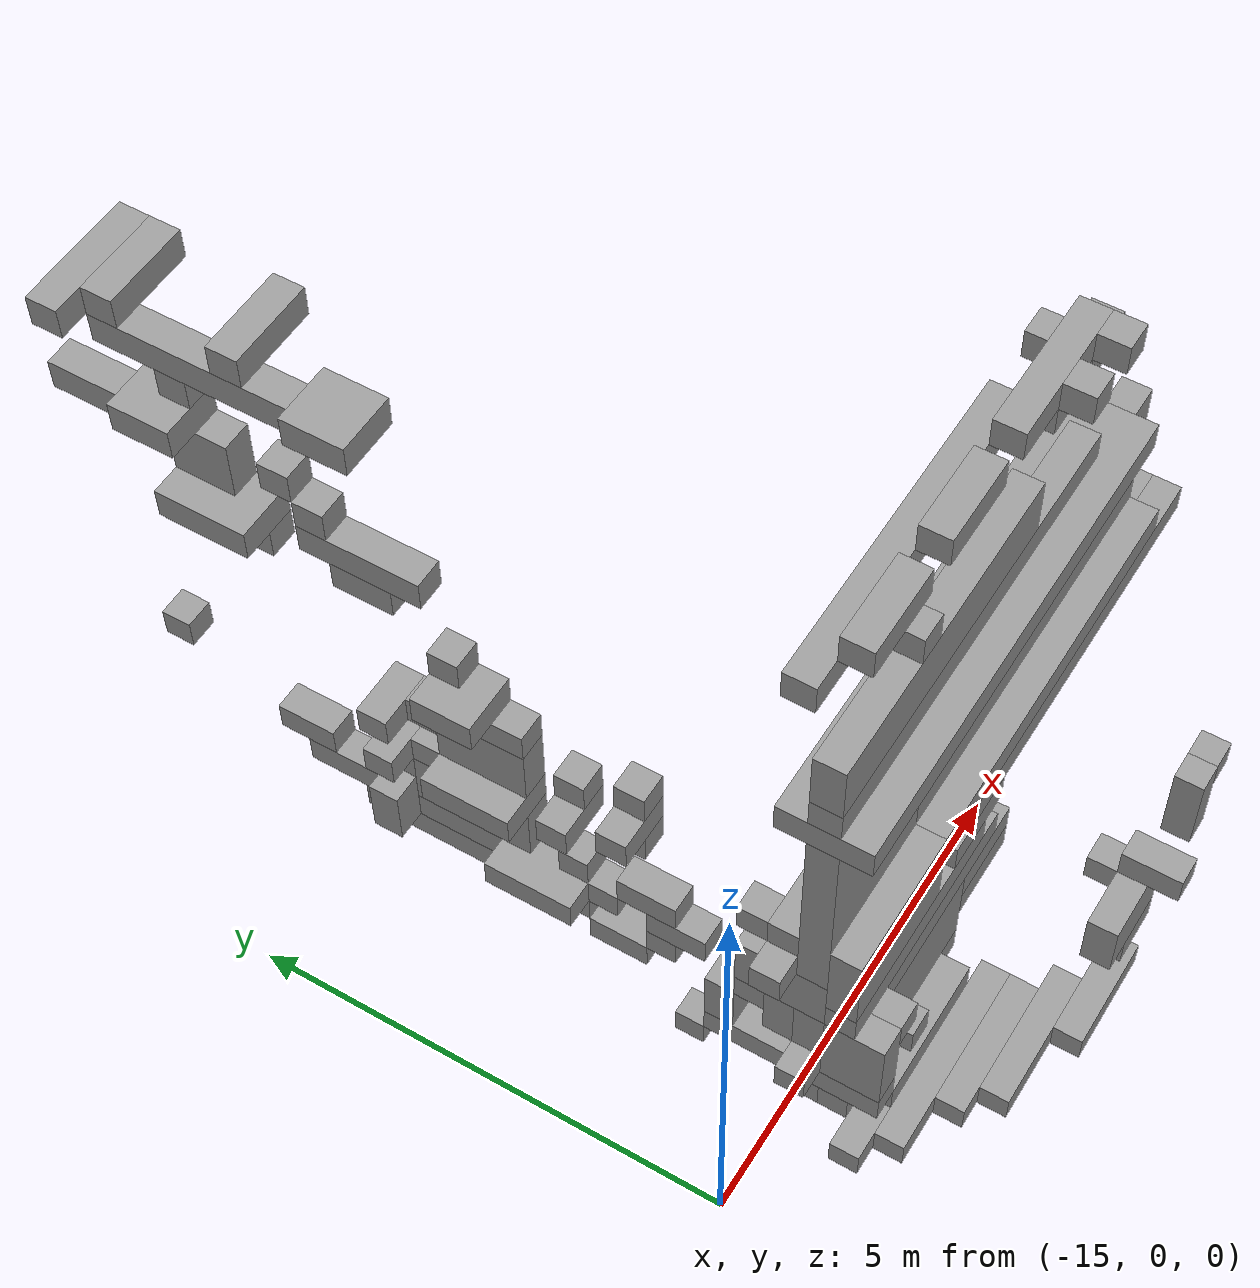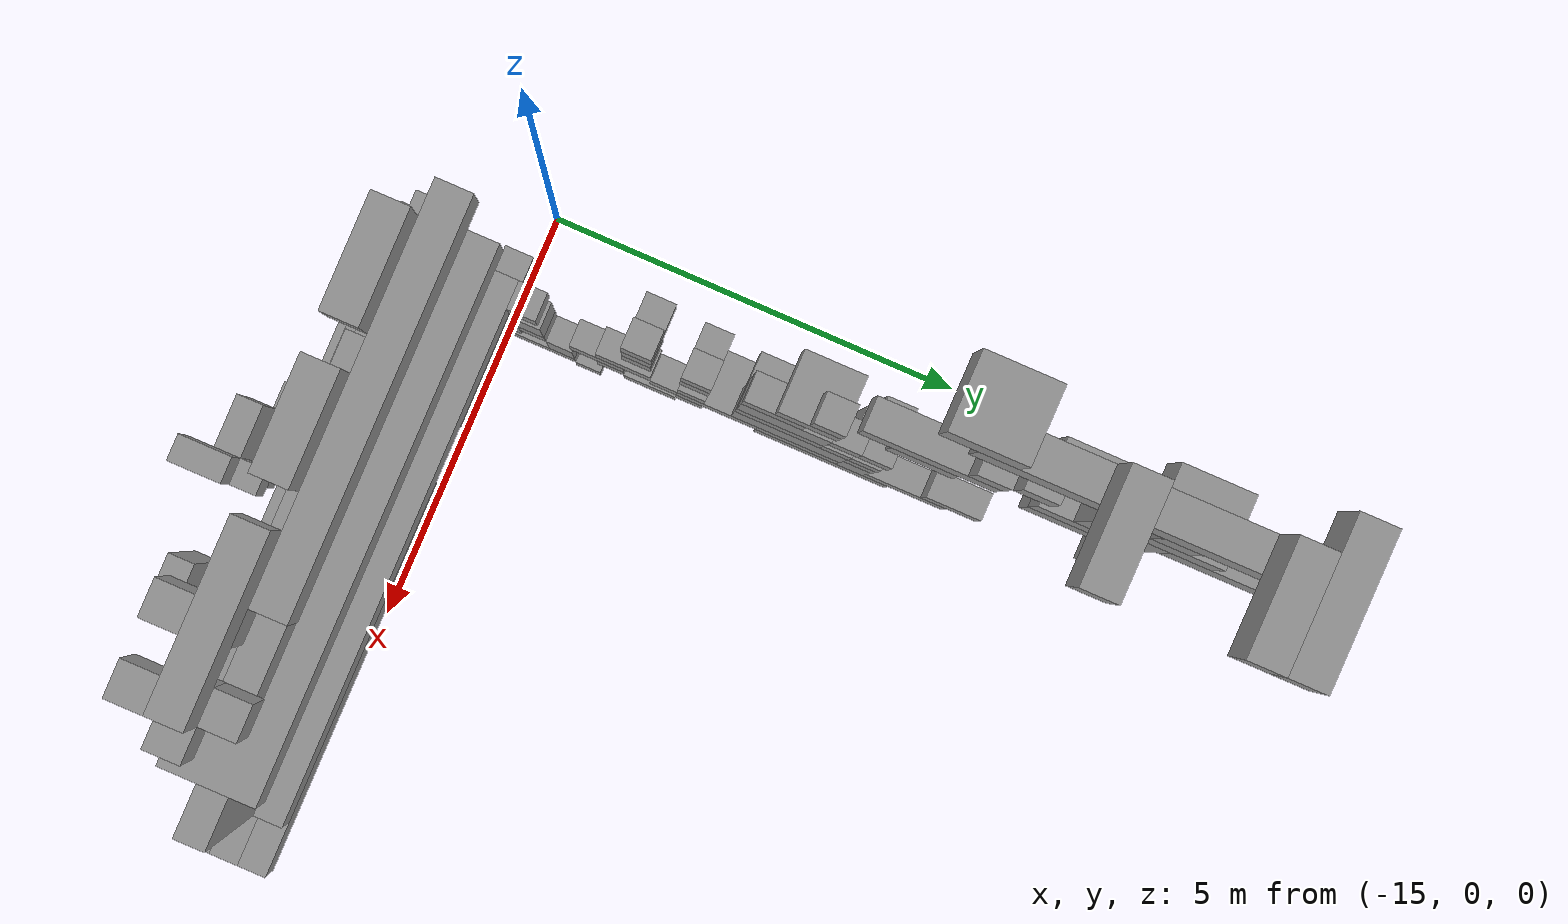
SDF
<sdf version="1.6">
 <world name="bt_world">
  <include><uri>model://sun</uri></include>
  <model name="obstacle_1312">
   <static>true</static>
   <pose>-13.35 -0.75 0.15 0 0 0</pose>
   <link name="link">
    <collision name="collision"><geometry><box><size>1.5 0.3 0.3</size></box></geometry></collision>
    <visual name="visual">
     <geometry><box><size>1.5 0.3 0.3</size></box></geometry>
     <material><ambient>0.5 0.5 0.5 1</ambient><diffuse>0.6 0.6 0.6 1</diffuse></material>
    </visual>
   </link>
  </model>
  <model name="obstacle_1313">
   <static>true</static>
   <pose>-13.65 -0.15 1.05 0 0 0</pose>
   <link name="link">
    <collision name="collision">
     <geometry><box><size>0.8999999999999999 0.3 0.3</size></box></geometry>
    </collision>
    <visual name="visual">
     <geometry><box><size>0.8999999999999999 0.3 0.3</size></box></geometry>
     <material><ambient>0.5 0.5 0.5 1</ambient><diffuse>0.6 0.6 0.6 1</diffuse></material>
    </visual>
   </link>
  </model>
  <model name="obstacle_1316">
   <static>true</static>
   <pose>-13.2 0.15 2.55 0 0 0</pose>
   <link name="link">
    <collision name="collision">
     <geometry><box><size>1.7999999999999998 0.3 0.3</size></box></geometry>
    </collision>
    <visual name="visual">
     <geometry><box><size>1.7999999999999998 0.3 0.3</size></box></geometry>
     <material><ambient>0.5 0.5 0.5 1</ambient><diffuse>0.6 0.6 0.6 1</diffuse></material>
    </visual>
   </link>
  </model>
  <model name="obstacle_1328">
   <static>true</static>
   <pose>-13.799999999999999 1.65 3.4499999999999997 0 0 0</pose>
   <link name="link">
    <collision name="collision"><geometry><box><size>0.6 0.3 0.3</size></box></geometry></collision>
    <visual name="visual">
     <geometry><box><size>0.6 0.3 0.3</size></box></geometry>
     <material><ambient>0.5 0.5 0.5 1</ambient><diffuse>0.6 0.6 0.6 1</diffuse></material>
    </visual>
   </link>
  </model>
  <model name="obstacle_1330">
   <static>true</static>
   <pose>-13.799999999999999 2.55 1.95 0 0 0</pose>
   <link name="link">
    <collision name="collision">
     <geometry><box><size>0.6 0.8999999999999999 0.3</size></box></geometry>
    </collision>
    <visual name="visual">
     <geometry><box><size>0.6 0.8999999999999999 0.3</size></box></geometry>
     <material><ambient>0.5 0.5 0.5 1</ambient><diffuse>0.6 0.6 0.6 1</diffuse></material>
    </visual>
   </link>
  </model>
  <model name="obstacle_1331">
   <static>true</static>
   <pose>-13.799999999999999 2.25 3.15 0 0 0</pose>
   <link name="link">
    <collision name="collision"><geometry><box><size>0.6 0.3 0.3</size></box></geometry></collision>
    <visual name="visual">
     <geometry><box><size>0.6 0.3 0.3</size></box></geometry>
     <material><ambient>0.5 0.5 0.5 1</ambient><diffuse>0.6 0.6 0.6 1</diffuse></material>
    </visual>
   </link>
  </model>
  <model name="obstacle_1334">
   <static>true</static>
   <pose>-13.799999999999999 3.15 2.85 0 0 0</pose>
   <link name="link">
    <collision name="collision">
     <geometry><box><size>0.6 0.8999999999999999 0.3</size></box></geometry>
    </collision>
    <visual name="visual">
     <geometry><box><size>0.6 0.8999999999999999 0.3</size></box></geometry>
     <material><ambient>0.5 0.5 0.5 1</ambient><diffuse>0.6 0.6 0.6 1</diffuse></material>
    </visual>
   </link>
  </model>
  <model name="obstacle_1337">
   <static>true</static>
   <pose>-13.799999999999999 3.3 4.05 0 0 0</pose>
   <link name="link">
    <collision name="collision"><geometry><box><size>0.6 0.6 0.3</size></box></geometry></collision>
    <visual name="visual">
     <geometry><box><size>0.6 0.6 0.3</size></box></geometry>
     <material><ambient>0.5 0.5 0.5 1</ambient><diffuse>0.6 0.6 0.6 1</diffuse></material>
    </visual>
   </link>
  </model>
  <model name="obstacle_1343">
   <static>true</static>
   <pose>-13.799999999999999 4.05 2.1 0 0 0</pose>
   <link name="link">
    <collision name="collision"><geometry><box><size>0.6 0.3 0.6</size></box></geometry></collision>
    <visual name="visual">
     <geometry><box><size>0.6 0.3 0.6</size></box></geometry>
     <material><ambient>0.5 0.5 0.5 1</ambient><diffuse>0.6 0.6 0.6 1</diffuse></material>
    </visual>
   </link>
  </model>
  <model name="obstacle_1344">
   <static>true</static>
   <pose>-13.799999999999999 4.05 2.85 0 0 0</pose>
   <link name="link">
    <collision name="collision"><geometry><box><size>0.6 0.3 0.3</size></box></geometry></collision>
    <visual name="visual">
     <geometry><box><size>0.6 0.3 0.3</size></box></geometry>
     <material><ambient>0.5 0.5 0.5 1</ambient><diffuse>0.6 0.6 0.6 1</diffuse></material>
    </visual>
   </link>
  </model>
  <model name="obstacle_1345">
   <static>true</static>
   <pose>-13.799999999999999 4.05 3.4499999999999997 0 0 0</pose>
   <link name="link">
    <collision name="collision"><geometry><box><size>0.6 0.3 0.3</size></box></geometry></collision>
    <visual name="visual">
     <geometry><box><size>0.6 0.3 0.3</size></box></geometry>
     <material><ambient>0.5 0.5 0.5 1</ambient><diffuse>0.6 0.6 0.6 1</diffuse></material>
    </visual>
   </link>
  </model>
  <model name="obstacle_1346">
   <static>true</static>
   <pose>-13.799999999999999 4.2 7.05 0 0 0</pose>
   <link name="link">
    <collision name="collision"><geometry><box><size>0.6 0.6 0.3</size></box></geometry></collision>
    <visual name="visual">
     <geometry><box><size>0.6 0.6 0.3</size></box></geometry>
     <material><ambient>0.5 0.5 0.5 1</ambient><diffuse>0.6 0.6 0.6 1</diffuse></material>
    </visual>
   </link>
  </model>
  <model name="obstacle_1351">
   <static>true</static>
   <pose>-13.799999999999999 5.55 5.25 0 0 0</pose>
   <link name="link">
    <collision name="collision">
     <geometry><box><size>0.6 0.8999999999999999 0.3</size></box></geometry>
    </collision>
    <visual name="visual">
     <geometry><box><size>0.6 0.8999999999999999 0.3</size></box></geometry>
     <material><ambient>0.5 0.5 0.5 1</ambient><diffuse>0.6 0.6 0.6 1</diffuse></material>
    </visual>
   </link>
  </model>
  <model name="obstacle_1355">
   <static>true</static>
   <pose>-13.799999999999999 6.0 6.1499999999999995 0 0 0</pose>
   <link name="link">
    <collision name="collision"><geometry><box><size>0.6 0.6 0.3</size></box></geometry></collision>
    <visual name="visual">
     <geometry><box><size>0.6 0.6 0.3</size></box></geometry>
     <material><ambient>0.5 0.5 0.5 1</ambient><diffuse>0.6 0.6 0.6 1</diffuse></material>
    </visual>
   </link>
  </model>
  <model name="obstacle_1360">
   <static>true</static>
   <pose>-13.5 6.75 7.05 0 0 0</pose>
   <link name="link">
    <collision name="collision"><geometry><box><size>1.2 0.3 0.3</size></box></geometry></collision>
    <visual name="visual">
     <geometry><box><size>1.2 0.3 0.3</size></box></geometry>
     <material><ambient>0.5 0.5 0.5 1</ambient><diffuse>0.6 0.6 0.6 1</diffuse></material>
    </visual>
   </link>
  </model>
  <model name="obstacle_1402">
   <static>true</static>
   <pose>-12.75 -1.05 0.15 0 0 0</pose>
   <link name="link">
    <collision name="collision"><geometry><box><size>2.1 0.3 0.3</size></box></geometry></collision>
    <visual name="visual">
     <geometry><box><size>2.1 0.3 0.3</size></box></geometry>
     <material><ambient>0.5 0.5 0.5 1</ambient><diffuse>0.6 0.6 0.6 1</diffuse></material>
    </visual>
   </link>
  </model>
  <model name="obstacle_1403">
   <static>true</static>
   <pose>-13.65 0.0 0.75 0 0 0</pose>
   <link name="link">
    <collision name="collision">
     <geometry><box><size>0.3 1.7999999999999998 0.3</size></box></geometry>
    </collision>
    <visual name="visual">
     <geometry><box><size>0.3 1.7999999999999998 0.3</size></box></geometry>
     <material><ambient>0.5 0.5 0.5 1</ambient><diffuse>0.6 0.6 0.6 1</diffuse></material>
    </visual>
   </link>
  </model>
  <model name="obstacle_1404">
   <static>true</static>
   <pose>-13.65 -0.6 1.3499999999999999 0 0 0</pose>
   <link name="link">
    <collision name="collision">
     <geometry><box><size>0.3 0.6 0.8999999999999999</size></box></geometry>
    </collision>
    <visual name="visual">
     <geometry><box><size>0.3 0.6 0.8999999999999999</size></box></geometry>
     <material><ambient>0.5 0.5 0.5 1</ambient><diffuse>0.6 0.6 0.6 1</diffuse></material>
    </visual>
   </link>
  </model>
  <model name="obstacle_1405">
   <static>true</static>
   <pose>-12.75 -0.44999999999999996 0.44999999999999996 0 0 0</pose>
   <link name="link">
    <collision name="collision"><geometry><box><size>2.1 0.3 0.3</size></box></geometry></collision>
    <visual name="visual">
     <geometry><box><size>2.1 0.3 0.3</size></box></geometry>
     <material><ambient>0.5 0.5 0.5 1</ambient><diffuse>0.6 0.6 0.6 1</diffuse></material>
    </visual>
   </link>
  </model>
  <model name="obstacle_1406">
   <static>true</static>
   <pose>-12.6 -0.44999999999999996 1.95 0 0 0</pose>
   <link name="link">
    <collision name="collision"><geometry><box><size>2.4 0.3 0.3</size></box></geometry></collision>
    <visual name="visual">
     <geometry><box><size>2.4 0.3 0.3</size></box></geometry>
     <material><ambient>0.5 0.5 0.5 1</ambient><diffuse>0.6 0.6 0.6 1</diffuse></material>
    </visual>
   </link>
  </model>
  <model name="obstacle_1407">
   <static>true</static>
   <pose>-13.049999999999999 -0.44999999999999996 2.55 0 0 0</pose>
   <link name="link">
    <collision name="collision">
     <geometry><box><size>1.5 0.3 0.8999999999999999</size></box></geometry>
    </collision>
    <visual name="visual">
     <geometry><box><size>1.5 0.3 0.8999999999999999</size></box></geometry>
     <material><ambient>0.5 0.5 0.5 1</ambient><diffuse>0.6 0.6 0.6 1</diffuse></material>
    </visual>
   </link>
  </model>
  <model name="obstacle_1408">
   <static>true</static>
   <pose>-11.25 -0.15 4.6499999999999995 0 0 0</pose>
   <link name="link">
    <collision name="collision">
     <geometry><box><size>5.1 0.8999999999999999 0.3</size></box></geometry>
    </collision>
    <visual name="visual">
     <geometry><box><size>5.1 0.8999999999999999 0.3</size></box></geometry>
     <material><ambient>0.5 0.5 0.5 1</ambient><diffuse>0.6 0.6 0.6 1</diffuse></material>
    </visual>
   </link>
  </model>
  <model name="obstacle_1409">
   <static>true</static>
   <pose>-13.5 -0.15 0.44999999999999996 0 0 0</pose>
   <link name="link">
    <collision name="collision"><geometry><box><size>0.6 0.3 0.3</size></box></geometry></collision>
    <visual name="visual">
     <geometry><box><size>0.6 0.3 0.3</size></box></geometry>
     <material><ambient>0.5 0.5 0.5 1</ambient><diffuse>0.6 0.6 0.6 1</diffuse></material>
    </visual>
   </link>
  </model>
  <model name="obstacle_1410">
   <static>true</static>
   <pose>-13.5 -0.15 1.5 0 0 0</pose>
   <link name="link">
    <collision name="collision"><geometry><box><size>0.6 0.3 0.6</size></box></geometry></collision>
    <visual name="visual">
     <geometry><box><size>0.6 0.3 0.6</size></box></geometry>
     <material><ambient>0.5 0.5 0.5 1</ambient><diffuse>0.6 0.6 0.6 1</diffuse></material>
    </visual>
   </link>
  </model>
  <model name="obstacle_1411">
   <static>true</static>
   <pose>-13.65 0.15 2.1 0 0 0</pose>
   <link name="link">
    <collision name="collision">
     <geometry><box><size>0.3 0.8999999999999999 0.6</size></box></geometry>
    </collision>
    <visual name="visual">
     <geometry><box><size>0.3 0.8999999999999999 0.6</size></box></geometry>
     <material><ambient>0.5 0.5 0.5 1</ambient><diffuse>0.6 0.6 0.6 1</diffuse></material>
    </visual>
   </link>
  </model>
  <model name="obstacle_1412">
   <static>true</static>
   <pose>-13.049999999999999 -0.15 3.4499999999999997 0 0 0</pose>
   <link name="link">
    <collision name="collision"><geometry><box><size>1.5 0.3 2.1</size></box></geometry></collision>
    <visual name="visual">
     <geometry><box><size>1.5 0.3 2.1</size></box></geometry>
     <material><ambient>0.5 0.5 0.5 1</ambient><diffuse>0.6 0.6 0.6 1</diffuse></material>
    </visual>
   </link>
  </model>
  <model name="obstacle_1413">
   <static>true</static>
   <pose>-11.549999999999999 -0.15 4.95 0 0 0</pose>
   <link name="link">
    <collision name="collision"><geometry><box><size>4.5 0.3 0.3</size></box></geometry></collision>
    <visual name="visual">
     <geometry><box><size>4.5 0.3 0.3</size></box></geometry>
     <material><ambient>0.5 0.5 0.5 1</ambient><diffuse>0.6 0.6 0.6 1</diffuse></material>
    </visual>
   </link>
  </model>
  <model name="obstacle_1414">
   <static>true</static>
   <pose>-12.15 -0.15 5.3999999999999995 0 0 0</pose>
   <link name="link">
    <collision name="collision"><geometry><box><size>3.3 0.3 0.6</size></box></geometry></collision>
    <visual name="visual">
     <geometry><box><size>3.3 0.3 0.6</size></box></geometry>
     <material><ambient>0.5 0.5 0.5 1</ambient><diffuse>0.6 0.6 0.6 1</diffuse></material>
    </visual>
   </link>
  </model>
  <model name="obstacle_1415">
   <static>true</static>
   <pose>-13.65 0.15 1.5 0 0 0</pose>
   <link name="link">
    <collision name="collision"><geometry><box><size>0.3 0.3 0.6</size></box></geometry></collision>
    <visual name="visual">
     <geometry><box><size>0.3 0.3 0.6</size></box></geometry>
     <material><ambient>0.5 0.5 0.5 1</ambient><diffuse>0.6 0.6 0.6 1</diffuse></material>
    </visual>
   </link>
  </model>
  <model name="obstacle_1416">
   <static>true</static>
   <pose>-10.95 0.15 2.85 0 0 0</pose>
   <link name="link">
    <collision name="collision"><geometry><box><size>5.7 0.3 0.3</size></box></geometry></collision>
    <visual name="visual">
     <geometry><box><size>5.7 0.3 0.3</size></box></geometry>
     <material><ambient>0.5 0.5 0.5 1</ambient><diffuse>0.6 0.6 0.6 1</diffuse></material>
    </visual>
   </link>
  </model>
  <model name="obstacle_1417">
   <static>true</static>
   <pose>-12.15 0.15 6.45 0 0 0</pose>
   <link name="link">
    <collision name="collision"><geometry><box><size>3.3 0.3 0.3</size></box></geometry></collision>
    <visual name="visual">
     <geometry><box><size>3.3 0.3 0.3</size></box></geometry>
     <material><ambient>0.5 0.5 0.5 1</ambient><diffuse>0.6 0.6 0.6 1</diffuse></material>
    </visual>
   </link>
  </model>
  <model name="obstacle_1418">
   <static>true</static>
   <pose>-13.65 0.44999999999999996 1.65 0 0 0</pose>
   <link name="link">
    <collision name="collision"><geometry><box><size>0.3 0.3 0.3</size></box></geometry></collision>
    <visual name="visual">
     <geometry><box><size>0.3 0.3 0.3</size></box></geometry>
     <material><ambient>0.5 0.5 0.5 1</ambient><diffuse>0.6 0.6 0.6 1</diffuse></material>
    </visual>
   </link>
  </model>
  <model name="obstacle_1419">
   <static>true</static>
   <pose>-13.65 0.44999999999999996 2.85 0 0 0</pose>
   <link name="link">
    <collision name="collision"><geometry><box><size>0.3 0.3 0.3</size></box></geometry></collision>
    <visual name="visual">
     <geometry><box><size>0.3 0.3 0.3</size></box></geometry>
     <material><ambient>0.5 0.5 0.5 1</ambient><diffuse>0.6 0.6 0.6 1</diffuse></material>
    </visual>
   </link>
  </model>
  <model name="obstacle_1420">
   <static>true</static>
   <pose>-13.65 0.75 1.2 0 0 0</pose>
   <link name="link">
    <collision name="collision"><geometry><box><size>0.3 0.3 0.6</size></box></geometry></collision>
    <visual name="visual">
     <geometry><box><size>0.3 0.3 0.6</size></box></geometry>
     <material><ambient>0.5 0.5 0.5 1</ambient><diffuse>0.6 0.6 0.6 1</diffuse></material>
    </visual>
   </link>
  </model>
  <model name="obstacle_1421">
   <static>true</static>
   <pose>-13.65 1.05 0.44999999999999996 0 0 0</pose>
   <link name="link">
    <collision name="collision"><geometry><box><size>0.3 0.3 0.3</size></box></geometry></collision>
    <visual name="visual">
     <geometry><box><size>0.3 0.3 0.3</size></box></geometry>
     <material><ambient>0.5 0.5 0.5 1</ambient><diffuse>0.6 0.6 0.6 1</diffuse></material>
    </visual>
   </link>
  </model>
  <model name="obstacle_1422">
   <static>true</static>
   <pose>-13.65 1.2 1.95 0 0 0</pose>
   <link name="link">
    <collision name="collision"><geometry><box><size>0.3 0.6 0.3</size></box></geometry></collision>
    <visual name="visual">
     <geometry><box><size>0.3 0.6 0.3</size></box></geometry>
     <material><ambient>0.5 0.5 0.5 1</ambient><diffuse>0.6 0.6 0.6 1</diffuse></material>
    </visual>
   </link>
  </model>
  <model name="obstacle_1423">
   <static>true</static>
   <pose>-13.65 1.3499999999999999 1.65 0 0 0</pose>
   <link name="link">
    <collision name="collision"><geometry><box><size>0.3 0.3 0.3</size></box></geometry></collision>
    <visual name="visual">
     <geometry><box><size>0.3 0.3 0.3</size></box></geometry>
     <material><ambient>0.5 0.5 0.5 1</ambient><diffuse>0.6 0.6 0.6 1</diffuse></material>
    </visual>
   </link>
  </model>
  <model name="obstacle_1424">
   <static>true</static>
   <pose>-13.65 1.5 2.25 0 0 0</pose>
   <link name="link">
    <collision name="collision"><geometry><box><size>0.3 0.6 0.3</size></box></geometry></collision>
    <visual name="visual">
     <geometry><box><size>0.3 0.6 0.3</size></box></geometry>
     <material><ambient>0.5 0.5 0.5 1</ambient><diffuse>0.6 0.6 0.6 1</diffuse></material>
    </visual>
   </link>
  </model>
  <model name="obstacle_1425">
   <static>true</static>
   <pose>-13.65 1.7999999999999998 1.3499999999999999 0 0 0</pose>
   <link name="link">
    <collision name="collision"><geometry><box><size>0.3 0.6 0.3</size></box></geometry></collision>
    <visual name="visual">
     <geometry><box><size>0.3 0.6 0.3</size></box></geometry>
     <material><ambient>0.5 0.5 0.5 1</ambient><diffuse>0.6 0.6 0.6 1</diffuse></material>
    </visual>
   </link>
  </model>
  <model name="obstacle_1426">
   <static>true</static>
   <pose>-13.65 1.65 3.15 0 0 0</pose>
   <link name="link">
    <collision name="collision"><geometry><box><size>0.3 0.3 0.3</size></box></geometry></collision>
    <visual name="visual">
     <geometry><box><size>0.3 0.3 0.3</size></box></geometry>
     <material><ambient>0.5 0.5 0.5 1</ambient><diffuse>0.6 0.6 0.6 1</diffuse></material>
    </visual>
   </link>
  </model>
  <model name="obstacle_1427">
   <static>true</static>
   <pose>-13.65 1.65 3.75 0 0 0</pose>
   <link name="link">
    <collision name="collision"><geometry><box><size>0.3 0.3 0.3</size></box></geometry></collision>
    <visual name="visual">
     <geometry><box><size>0.3 0.3 0.3</size></box></geometry>
     <material><ambient>0.5 0.5 0.5 1</ambient><diffuse>0.6 0.6 0.6 1</diffuse></material>
    </visual>
   </link>
  </model>
  <model name="obstacle_1428">
   <static>true</static>
   <pose>-13.65 1.95 1.95 0 0 0</pose>
   <link name="link">
    <collision name="collision"><geometry><box><size>0.3 0.3 0.3</size></box></geometry></collision>
    <visual name="visual">
     <geometry><box><size>0.3 0.3 0.3</size></box></geometry>
     <material><ambient>0.5 0.5 0.5 1</ambient><diffuse>0.6 0.6 0.6 1</diffuse></material>
    </visual>
   </link>
  </model>
  <model name="obstacle_1429">
   <static>true</static>
   <pose>-13.65 2.25 1.65 0 0 0</pose>
   <link name="link">
    <collision name="collision"><geometry><box><size>0.3 0.3 0.3</size></box></geometry></collision>
    <visual name="visual">
     <geometry><box><size>0.3 0.3 0.3</size></box></geometry>
     <material><ambient>0.5 0.5 0.5 1</ambient><diffuse>0.6 0.6 0.6 1</diffuse></material>
    </visual>
   </link>
  </model>
  <model name="obstacle_1430">
   <static>true</static>
   <pose>-13.65 2.25 2.25 0 0 0</pose>
   <link name="link">
    <collision name="collision"><geometry><box><size>0.3 0.3 0.3</size></box></geometry></collision>
    <visual name="visual">
     <geometry><box><size>0.3 0.3 0.3</size></box></geometry>
     <material><ambient>0.5 0.5 0.5 1</ambient><diffuse>0.6 0.6 0.6 1</diffuse></material>
    </visual>
   </link>
  </model>
  <model name="obstacle_1431">
   <static>true</static>
   <pose>-13.65 2.25 3.4499999999999997 0 0 0</pose>
   <link name="link">
    <collision name="collision"><geometry><box><size>0.3 0.3 0.3</size></box></geometry></collision>
    <visual name="visual">
     <geometry><box><size>0.3 0.3 0.3</size></box></geometry>
     <material><ambient>0.5 0.5 0.5 1</ambient><diffuse>0.6 0.6 0.6 1</diffuse></material>
    </visual>
   </link>
  </model>
  <model name="obstacle_1432">
   <static>true</static>
   <pose>-13.65 3.3 2.4 0 0 0</pose>
   <link name="link">
    <collision name="collision"><geometry><box><size>0.3 1.2 0.6</size></box></geometry></collision>
    <visual name="visual">
     <geometry><box><size>0.3 1.2 0.6</size></box></geometry>
     <material><ambient>0.5 0.5 0.5 1</ambient><diffuse>0.6 0.6 0.6 1</diffuse></material>
    </visual>
   </link>
  </model>
  <model name="obstacle_1433">
   <static>true</static>
   <pose>-13.65 3.15 3.3 0 0 0</pose>
   <link name="link">
    <collision name="collision">
     <geometry><box><size>0.3 0.8999999999999999 0.6</size></box></geometry>
    </collision>
    <visual name="visual">
     <geometry><box><size>0.3 0.8999999999999999 0.6</size></box></geometry>
     <material><ambient>0.5 0.5 0.5 1</ambient><diffuse>0.6 0.6 0.6 1</diffuse></material>
    </visual>
   </link>
  </model>
  <model name="obstacle_1434">
   <static>true</static>
   <pose>-13.65 3.0 3.75 0 0 0</pose>
   <link name="link">
    <collision name="collision"><geometry><box><size>0.3 0.6 0.3</size></box></geometry></collision>
    <visual name="visual">
     <geometry><box><size>0.3 0.6 0.3</size></box></geometry>
     <material><ambient>0.5 0.5 0.5 1</ambient><diffuse>0.6 0.6 0.6 1</diffuse></material>
    </visual>
   </link>
  </model>
  <model name="obstacle_1435">
   <static>true</static>
   <pose>-13.65 3.75 1.65 0 0 0</pose>
   <link name="link">
    <collision name="collision"><geometry><box><size>0.3 1.5 0.3</size></box></geometry></collision>
    <visual name="visual">
     <geometry><box><size>0.3 1.5 0.3</size></box></geometry>
     <material><ambient>0.5 0.5 0.5 1</ambient><diffuse>0.6 0.6 0.6 1</diffuse></material>
    </visual>
   </link>
  </model>
  <model name="obstacle_1436">
   <static>true</static>
   <pose>-13.65 3.4499999999999997 1.95 0 0 0</pose>
   <link name="link">
    <collision name="collision">
     <geometry><box><size>0.3 0.8999999999999999 0.3</size></box></geometry>
    </collision>
    <visual name="visual">
     <geometry><box><size>0.3 0.8999999999999999 0.3</size></box></geometry>
     <material><ambient>0.5 0.5 0.5 1</ambient><diffuse>0.6 0.6 0.6 1</diffuse></material>
    </visual>
   </link>
  </model>
  <model name="obstacle_1437">
   <static>true</static>
   <pose>-13.65 3.4499999999999997 4.35 0 0 0</pose>
   <link name="link">
    <collision name="collision"><geometry><box><size>0.3 0.3 0.3</size></box></geometry></collision>
    <visual name="visual">
     <geometry><box><size>0.3 0.3 0.3</size></box></geometry>
     <material><ambient>0.5 0.5 0.5 1</ambient><diffuse>0.6 0.6 0.6 1</diffuse></material>
    </visual>
   </link>
  </model>
  <model name="obstacle_1438">
   <static>true</static>
   <pose>-13.65 3.75 2.85 0 0 0</pose>
   <link name="link">
    <collision name="collision"><geometry><box><size>0.3 0.3 0.3</size></box></geometry></collision>
    <visual name="visual">
     <geometry><box><size>0.3 0.3 0.3</size></box></geometry>
     <material><ambient>0.5 0.5 0.5 1</ambient><diffuse>0.6 0.6 0.6 1</diffuse></material>
    </visual>
   </link>
  </model>
  <model name="obstacle_1439">
   <static>true</static>
   <pose>-13.65 3.75 3.4499999999999997 0 0 0</pose>
   <link name="link">
    <collision name="collision"><geometry><box><size>0.3 0.3 0.3</size></box></geometry></collision>
    <visual name="visual">
     <geometry><box><size>0.3 0.3 0.3</size></box></geometry>
     <material><ambient>0.5 0.5 0.5 1</ambient><diffuse>0.6 0.6 0.6 1</diffuse></material>
    </visual>
   </link>
  </model>
  <model name="obstacle_1440">
   <static>true</static>
   <pose>-13.65 4.2 5.25 0 0 0</pose>
   <link name="link">
    <collision name="collision"><geometry><box><size>0.3 1.2 0.3</size></box></geometry></collision>
    <visual name="visual">
     <geometry><box><size>0.3 1.2 0.3</size></box></geometry>
     <material><ambient>0.5 0.5 0.5 1</ambient><diffuse>0.6 0.6 0.6 1</diffuse></material>
    </visual>
   </link>
  </model>
  <model name="obstacle_1441">
   <static>true</static>
   <pose>-13.65 4.05 2.55 0 0 0</pose>
   <link name="link">
    <collision name="collision"><geometry><box><size>0.3 0.3 0.3</size></box></geometry></collision>
    <visual name="visual">
     <geometry><box><size>0.3 0.3 0.3</size></box></geometry>
     <material><ambient>0.5 0.5 0.5 1</ambient><diffuse>0.6 0.6 0.6 1</diffuse></material>
    </visual>
   </link>
  </model>
  <model name="obstacle_1442">
   <static>true</static>
   <pose>-13.65 4.2 4.95 0 0 0</pose>
   <link name="link">
    <collision name="collision"><geometry><box><size>0.3 0.6 0.3</size></box></geometry></collision>
    <visual name="visual">
     <geometry><box><size>0.3 0.6 0.3</size></box></geometry>
     <material><ambient>0.5 0.5 0.5 1</ambient><diffuse>0.6 0.6 0.6 1</diffuse></material>
    </visual>
   </link>
  </model>
  <model name="obstacle_1443">
   <static>true</static>
   <pose>-13.65 4.6499999999999995 1.95 0 0 0</pose>
   <link name="link">
    <collision name="collision">
     <geometry><box><size>0.3 0.8999999999999999 0.3</size></box></geometry>
    </collision>
    <visual name="visual">
     <geometry><box><size>0.3 0.8999999999999999 0.3</size></box></geometry>
     <material><ambient>0.5 0.5 0.5 1</ambient><diffuse>0.6 0.6 0.6 1</diffuse></material>
    </visual>
   </link>
  </model>
  <model name="obstacle_1444">
   <static>true</static>
   <pose>-13.65 5.3999999999999995 6.75 0 0 0</pose>
   <link name="link">
    <collision name="collision"><geometry><box><size>0.3 2.4 0.3</size></box></geometry></collision>
    <visual name="visual">
     <geometry><box><size>0.3 2.4 0.3</size></box></geometry>
     <material><ambient>0.5 0.5 0.5 1</ambient><diffuse>0.6 0.6 0.6 1</diffuse></material>
    </visual>
   </link>
  </model>
  <model name="obstacle_1445">
   <static>true</static>
   <pose>-13.65 4.6499999999999995 5.55 0 0 0</pose>
   <link name="link">
    <collision name="collision"><geometry><box><size>0.3 0.3 0.3</size></box></geometry></collision>
    <visual name="visual">
     <geometry><box><size>0.3 0.3 0.3</size></box></geometry>
     <material><ambient>0.5 0.5 0.5 1</ambient><diffuse>0.6 0.6 0.6 1</diffuse></material>
    </visual>
   </link>
  </model>
  <model name="obstacle_1446">
   <static>true</static>
   <pose>-13.65 5.1 2.25 0 0 0</pose>
   <link name="link">
    <collision name="collision"><geometry><box><size>0.3 0.6 0.3</size></box></geometry></collision>
    <visual name="visual">
     <geometry><box><size>0.3 0.6 0.3</size></box></geometry>
     <material><ambient>0.5 0.5 0.5 1</ambient><diffuse>0.6 0.6 0.6 1</diffuse></material>
    </visual>
   </link>
  </model>
  <model name="obstacle_1447">
   <static>true</static>
   <pose>-13.65 4.95 5.85 0 0 0</pose>
   <link name="link">
    <collision name="collision"><geometry><box><size>0.3 0.3 0.3</size></box></geometry></collision>
    <visual name="visual">
     <geometry><box><size>0.3 0.3 0.3</size></box></geometry>
     <material><ambient>0.5 0.5 0.5 1</ambient><diffuse>0.6 0.6 0.6 1</diffuse></material>
    </visual>
   </link>
  </model>
  <model name="obstacle_1448">
   <static>true</static>
   <pose>-13.65 5.3999999999999995 4.95 0 0 0</pose>
   <link name="link">
    <collision name="collision"><geometry><box><size>0.3 0.6 0.3</size></box></geometry></collision>
    <visual name="visual">
     <geometry><box><size>0.3 0.6 0.3</size></box></geometry>
     <material><ambient>0.5 0.5 0.5 1</ambient><diffuse>0.6 0.6 0.6 1</diffuse></material>
    </visual>
   </link>
  </model>
  <model name="obstacle_1449">
   <static>true</static>
   <pose>-13.35 5.25 7.05 0 0 0</pose>
   <link name="link">
    <collision name="collision">
     <geometry><box><size>0.8999999999999999 0.3 0.3</size></box></geometry>
    </collision>
    <visual name="visual">
     <geometry><box><size>0.8999999999999999 0.3 0.3</size></box></geometry>
     <material><ambient>0.5 0.5 0.5 1</ambient><diffuse>0.6 0.6 0.6 1</diffuse></material>
    </visual>
   </link>
  </model>
  <model name="obstacle_1450">
   <static>true</static>
   <pose>-13.65 5.7 5.7 0 0 0</pose>
   <link name="link">
    <collision name="collision"><geometry><box><size>0.3 0.6 0.6</size></box></geometry></collision>
    <visual name="visual">
     <geometry><box><size>0.3 0.6 0.6</size></box></geometry>
     <material><ambient>0.5 0.5 0.5 1</ambient><diffuse>0.6 0.6 0.6 1</diffuse></material>
    </visual>
   </link>
  </model>
  <model name="obstacle_1451">
   <static>true</static>
   <pose>-13.65 5.85 6.45 0 0 0</pose>
   <link name="link">
    <collision name="collision"><geometry><box><size>0.3 0.3 0.3</size></box></geometry></collision>
    <visual name="visual">
     <geometry><box><size>0.3 0.3 0.3</size></box></geometry>
     <material><ambient>0.5 0.5 0.5 1</ambient><diffuse>0.6 0.6 0.6 1</diffuse></material>
    </visual>
   </link>
  </model>
  <model name="obstacle_1452">
   <static>true</static>
   <pose>-13.65 6.6 5.85 0 0 0</pose>
   <link name="link">
    <collision name="collision"><geometry><box><size>0.3 1.2 0.3</size></box></geometry></collision>
    <visual name="visual">
     <geometry><box><size>0.3 1.2 0.3</size></box></geometry>
     <material><ambient>0.5 0.5 0.5 1</ambient><diffuse>0.6 0.6 0.6 1</diffuse></material>
    </visual>
   </link>
  </model>
  <model name="obstacle_1453">
   <static>true</static>
   <pose>-13.65 6.45 2.85 0 0 0</pose>
   <link name="link">
    <collision name="collision"><geometry><box><size>0.3 0.3 0.3</size></box></geometry></collision>
    <visual name="visual">
     <geometry><box><size>0.3 0.3 0.3</size></box></geometry>
     <material><ambient>0.5 0.5 0.5 1</ambient><diffuse>0.6 0.6 0.6 1</diffuse></material>
    </visual>
   </link>
  </model>
  <model name="obstacle_1454">
   <static>true</static>
   <pose>-13.35 6.45 7.05 0 0 0</pose>
   <link name="link">
    <collision name="collision">
     <geometry><box><size>0.8999999999999999 0.3 0.3</size></box></geometry>
    </collision>
    <visual name="visual">
     <geometry><box><size>0.8999999999999999 0.3 0.3</size></box></geometry>
     <material><ambient>0.5 0.5 0.5 1</ambient><diffuse>0.6 0.6 0.6 1</diffuse></material>
    </visual>
   </link>
  </model>
  <model name="obstacle_1507">
   <static>true</static>
   <pose>-12.75 -0.75 0.44999999999999996 0 0 0</pose>
   <link name="link">
    <collision name="collision"><geometry><box><size>1.5 0.3 0.3</size></box></geometry></collision>
    <visual name="visual">
     <geometry><box><size>1.5 0.3 0.3</size></box></geometry>
     <material><ambient>0.5 0.5 0.5 1</ambient><diffuse>0.6 0.6 0.6 1</diffuse></material>
    </visual>
   </link>
  </model>
  <model name="obstacle_1508">
   <static>true</static>
   <pose>-13.35 -0.6 1.65 0 0 0</pose>
   <link name="link">
    <collision name="collision"><geometry><box><size>0.3 0.6 0.3</size></box></geometry></collision>
    <visual name="visual">
     <geometry><box><size>0.3 0.6 0.3</size></box></geometry>
     <material><ambient>0.5 0.5 0.5 1</ambient><diffuse>0.6 0.6 0.6 1</diffuse></material>
    </visual>
   </link>
  </model>
  <model name="obstacle_1509">
   <static>true</static>
   <pose>-12.6 -0.44999999999999996 1.05 0 0 0</pose>
   <link name="link">
    <collision name="collision">
     <geometry><box><size>1.7999999999999998 0.3 0.8999999999999999</size></box></geometry>
    </collision>
    <visual name="visual">
     <geometry><box><size>1.7999999999999998 0.3 0.8999999999999999</size></box></geometry>
     <material><ambient>0.5 0.5 0.5 1</ambient><diffuse>0.6 0.6 0.6 1</diffuse></material>
    </visual>
   </link>
  </model>
  <model name="obstacle_1510">
   <static>true</static>
   <pose>-13.35 -0.15 0.75 0 0 0</pose>
   <link name="link">
    <collision name="collision"><geometry><box><size>0.3 0.3 0.3</size></box></geometry></collision>
    <visual name="visual">
     <geometry><box><size>0.3 0.3 0.3</size></box></geometry>
     <material><ambient>0.5 0.5 0.5 1</ambient><diffuse>0.6 0.6 0.6 1</diffuse></material>
    </visual>
   </link>
  </model>
  <model name="obstacle_1511">
   <static>true</static>
   <pose>-13.049999999999999 -0.15 6.75 0 0 0</pose>
   <link name="link">
    <collision name="collision">
     <geometry><box><size>0.8999999999999999 0.3 0.3</size></box></geometry>
    </collision>
    <visual name="visual">
     <geometry><box><size>0.8999999999999999 0.3 0.3</size></box></geometry>
     <material><ambient>0.5 0.5 0.5 1</ambient><diffuse>0.6 0.6 0.6 1</diffuse></material>
    </visual>
   </link>
  </model>
  <model name="obstacle_1544">
   <static>true</static>
   <pose>-12.45 -1.3499999999999999 0.15 0 0 0</pose>
   <link name="link">
    <collision name="collision"><geometry><box><size>1.5 0.3 0.3</size></box></geometry></collision>
    <visual name="visual">
     <geometry><box><size>1.5 0.3 0.3</size></box></geometry>
     <material><ambient>0.5 0.5 0.5 1</ambient><diffuse>0.6 0.6 0.6 1</diffuse></material>
    </visual>
   </link>
  </model>
  <model name="obstacle_1545">
   <static>true</static>
   <pose>-13.049999999999999 -0.75 1.05 0 0 0</pose>
   <link name="link">
    <collision name="collision"><geometry><box><size>0.3 0.3 0.3</size></box></geometry></collision>
    <visual name="visual">
     <geometry><box><size>0.3 0.3 0.3</size></box></geometry>
     <material><ambient>0.5 0.5 0.5 1</ambient><diffuse>0.6 0.6 0.6 1</diffuse></material>
    </visual>
   </link>
  </model>
  <model name="obstacle_1546">
   <static>true</static>
   <pose>-12.15 -0.44999999999999996 1.65 0 0 0</pose>
   <link name="link">
    <collision name="collision"><geometry><box><size>2.1 0.3 0.3</size></box></geometry></collision>
    <visual name="visual">
     <geometry><box><size>2.1 0.3 0.3</size></box></geometry>
     <material><ambient>0.5 0.5 0.5 1</ambient><diffuse>0.6 0.6 0.6 1</diffuse></material>
    </visual>
   </link>
  </model>
  <model name="obstacle_1560">
   <static>true</static>
   <pose>-12.15 -1.65 0.15 0 0 0</pose>
   <link name="link">
    <collision name="collision"><geometry><box><size>1.5 0.3 0.3</size></box></geometry></collision>
    <visual name="visual">
     <geometry><box><size>1.5 0.3 0.3</size></box></geometry>
     <material><ambient>0.5 0.5 0.5 1</ambient><diffuse>0.6 0.6 0.6 1</diffuse></material>
    </visual>
   </link>
  </model>
  <model name="obstacle_1579">
   <static>true</static>
   <pose>-12.45 -0.15 5.85 0 0 0</pose>
   <link name="link">
    <collision name="collision"><geometry><box><size>0.3 0.3 0.3</size></box></geometry></collision>
    <visual name="visual">
     <geometry><box><size>0.3 0.3 0.3</size></box></geometry>
     <material><ambient>0.5 0.5 0.5 1</ambient><diffuse>0.6 0.6 0.6 1</diffuse></material>
    </visual>
   </link>
  </model>
  <model name="obstacle_1592">
   <static>true</static>
   <pose>-12.15 -0.75 0.15 0 0 0</pose>
   <link name="link">
    <collision name="collision"><geometry><box><size>0.3 0.3 0.3</size></box></geometry></collision>
    <visual name="visual">
     <geometry><box><size>0.3 0.3 0.3</size></box></geometry>
     <material><ambient>0.5 0.5 0.5 1</ambient><diffuse>0.6 0.6 0.6 1</diffuse></material>
    </visual>
   </link>
  </model>
  <model name="obstacle_1593">
   <static>true</static>
   <pose>-10.2 -0.3 2.85 0 0 0</pose>
   <link name="link">
    <collision name="collision"><geometry><box><size>4.2 0.6 0.3</size></box></geometry></collision>
    <visual name="visual">
     <geometry><box><size>4.2 0.6 0.3</size></box></geometry>
     <material><ambient>0.5 0.5 0.5 1</ambient><diffuse>0.6 0.6 0.6 1</diffuse></material>
    </visual>
   </link>
  </model>
  <model name="obstacle_1594">
   <static>true</static>
   <pose>-10.2 -0.15 3.75 0 0 0</pose>
   <link name="link">
    <collision name="collision"><geometry><box><size>4.2 0.3 1.5</size></box></geometry></collision>
    <visual name="visual">
     <geometry><box><size>4.2 0.3 1.5</size></box></geometry>
     <material><ambient>0.5 0.5 0.5 1</ambient><diffuse>0.6 0.6 0.6 1</diffuse></material>
    </visual>
   </link>
  </model>
  <model name="obstacle_1595">
   <static>true</static>
   <pose>-11.85 -0.15 6.75 0 0 0</pose>
   <link name="link">
    <collision name="collision">
     <geometry><box><size>0.8999999999999999 0.3 0.3</size></box></geometry>
    </collision>
    <visual name="visual">
     <geometry><box><size>0.8999999999999999 0.3 0.3</size></box></geometry>
     <material><ambient>0.5 0.5 0.5 1</ambient><diffuse>0.6 0.6 0.6 1</diffuse></material>
    </visual>
   </link>
  </model>
  <model name="obstacle_1610">
   <static>true</static>
   <pose>-11.4 -1.95 0.15 0 0 0</pose>
   <link name="link">
    <collision name="collision"><geometry><box><size>1.2 0.3 0.3</size></box></geometry></collision>
    <visual name="visual">
     <geometry><box><size>1.2 0.3 0.3</size></box></geometry>
     <material><ambient>0.5 0.5 0.5 1</ambient><diffuse>0.6 0.6 0.6 1</diffuse></material>
    </visual>
   </link>
  </model>
  <model name="obstacle_1611">
   <static>true</static>
   <pose>-11.549999999999999 -0.44999999999999996 2.25 0 0 0</pose>
   <link name="link">
    <collision name="collision">
     <geometry><box><size>0.8999999999999999 0.3 0.3</size></box></geometry>
    </collision>
    <visual name="visual">
     <geometry><box><size>0.8999999999999999 0.3 0.3</size></box></geometry>
     <material><ambient>0.5 0.5 0.5 1</ambient><diffuse>0.6 0.6 0.6 1</diffuse></material>
    </visual>
   </link>
  </model>
  <model name="obstacle_1612">
   <static>true</static>
   <pose>-9.75 -0.15 2.55 0 0 0</pose>
   <link name="link">
    <collision name="collision"><geometry><box><size>4.5 0.3 0.3</size></box></geometry></collision>
    <visual name="visual">
     <geometry><box><size>4.5 0.3 0.3</size></box></geometry>
     <material><ambient>0.5 0.5 0.5 1</ambient><diffuse>0.6 0.6 0.6 1</diffuse></material>
    </visual>
   </link>
  </model>
  <model name="obstacle_1635">
   <static>true</static>
   <pose>-11.25 -1.95 1.5 0 0 0</pose>
   <link name="link">
    <collision name="collision">
     <geometry><box><size>0.8999999999999999 0.3 0.6</size></box></geometry>
    </collision>
    <visual name="visual">
     <geometry><box><size>0.8999999999999999 0.3 0.6</size></box></geometry>
     <material><ambient>0.5 0.5 0.5 1</ambient><diffuse>0.6 0.6 0.6 1</diffuse></material>
    </visual>
   </link>
  </model>
  <model name="obstacle_1636">
   <static>true</static>
   <pose>-11.25 -0.3 1.05 0 0 0</pose>
   <link name="link">
    <collision name="collision">
     <geometry><box><size>0.8999999999999999 0.6 0.3</size></box></geometry>
    </collision>
    <visual name="visual">
     <geometry><box><size>0.8999999999999999 0.6 0.3</size></box></geometry>
     <material><ambient>0.5 0.5 0.5 1</ambient><diffuse>0.6 0.6 0.6 1</diffuse></material>
    </visual>
   </link>
  </model>
  <model name="obstacle_1637">
   <static>true</static>
   <pose>-11.25 -0.44999999999999996 1.3499999999999999 0 0 0</pose>
   <link name="link">
    <collision name="collision">
     <geometry><box><size>0.8999999999999999 0.3 0.3</size></box></geometry>
    </collision>
    <visual name="visual">
     <geometry><box><size>0.8999999999999999 0.3 0.3</size></box></geometry>
     <material><ambient>0.5 0.5 0.5 1</ambient><diffuse>0.6 0.6 0.6 1</diffuse></material>
    </visual>
   </link>
  </model>
  <model name="obstacle_1638">
   <static>true</static>
   <pose>-9.6 -0.44999999999999996 2.55 0 0 0</pose>
   <link name="link">
    <collision name="collision"><geometry><box><size>4.2 0.3 0.3</size></box></geometry></collision>
    <visual name="visual">
     <geometry><box><size>4.2 0.3 0.3</size></box></geometry>
     <material><ambient>0.5 0.5 0.5 1</ambient><diffuse>0.6 0.6 0.6 1</diffuse></material>
    </visual>
   </link>
  </model>
  <model name="obstacle_1639">
   <static>true</static>
   <pose>-9.9 -0.15 1.65 0 0 0</pose>
   <link name="link">
    <collision name="collision">
     <geometry><box><size>3.5999999999999996 0.3 0.3</size></box></geometry>
    </collision>
    <visual name="visual">
     <geometry><box><size>3.5999999999999996 0.3 0.3</size></box></geometry>
     <material><ambient>0.5 0.5 0.5 1</ambient><diffuse>0.6 0.6 0.6 1</diffuse></material>
    </visual>
   </link>
  </model>
  <model name="obstacle_1640">
   <static>true</static>
   <pose>-11.549999999999999 -0.15 2.1 0 0 0</pose>
   <link name="link">
    <collision name="collision"><geometry><box><size>0.3 0.3 0.6</size></box></geometry></collision>
    <visual name="visual">
     <geometry><box><size>0.3 0.3 0.6</size></box></geometry>
     <material><ambient>0.5 0.5 0.5 1</ambient><diffuse>0.6 0.6 0.6 1</diffuse></material>
    </visual>
   </link>
  </model>
  <model name="obstacle_1641">
   <static>true</static>
   <pose>-9.6 0.15 2.55 0 0 0</pose>
   <link name="link">
    <collision name="collision"><geometry><box><size>4.2 0.3 0.3</size></box></geometry></collision>
    <visual name="visual">
     <geometry><box><size>4.2 0.3 0.3</size></box></geometry>
     <material><ambient>0.5 0.5 0.5 1</ambient><diffuse>0.6 0.6 0.6 1</diffuse></material>
    </visual>
   </link>
  </model>
  <model name="obstacle_1651">
   <static>true</static>
   <pose>-11.1 -1.95 1.05 0 0 0</pose>
   <link name="link">
    <collision name="collision"><geometry><box><size>0.6 0.3 0.3</size></box></geometry></collision>
    <visual name="visual">
     <geometry><box><size>0.6 0.3 0.3</size></box></geometry>
     <material><ambient>0.5 0.5 0.5 1</ambient><diffuse>0.6 0.6 0.6 1</diffuse></material>
    </visual>
   </link>
  </model>
  <model name="obstacle_1652">
   <static>true</static>
   <pose>-11.1 -0.15 1.3499999999999999 0 0 0</pose>
   <link name="link">
    <collision name="collision"><geometry><box><size>0.6 0.3 0.3</size></box></geometry></collision>
    <visual name="visual">
     <geometry><box><size>0.6 0.3 0.3</size></box></geometry>
     <material><ambient>0.5 0.5 0.5 1</ambient><diffuse>0.6 0.6 0.6 1</diffuse></material>
    </visual>
   </link>
  </model>
  <model name="obstacle_1657">
   <static>true</static>
   <pose>-10.95 -2.1 1.95 0 0 0</pose>
   <link name="link">
    <collision name="collision"><geometry><box><size>0.3 0.6 0.3</size></box></geometry></collision>
    <visual name="visual">
     <geometry><box><size>0.3 0.6 0.3</size></box></geometry>
     <material><ambient>0.5 0.5 0.5 1</ambient><diffuse>0.6 0.6 0.6 1</diffuse></material>
    </visual>
   </link>
  </model>
  <model name="obstacle_1658">
   <static>true</static>
   <pose>-10.95 -1.65 1.65 0 0 0</pose>
   <link name="link">
    <collision name="collision"><geometry><box><size>0.3 0.3 0.3</size></box></geometry></collision>
    <visual name="visual">
     <geometry><box><size>0.3 0.3 0.3</size></box></geometry>
     <material><ambient>0.5 0.5 0.5 1</ambient><diffuse>0.6 0.6 0.6 1</diffuse></material>
    </visual>
   </link>
  </model>
  <model name="obstacle_1660">
   <static>true</static>
   <pose>-10.35 -0.15 6.75 0 0 0</pose>
   <link name="link">
    <collision name="collision"><geometry><box><size>1.5 0.3 0.3</size></box></geometry></collision>
    <visual name="visual">
     <geometry><box><size>1.5 0.3 0.3</size></box></geometry>
     <material><ambient>0.5 0.5 0.5 1</ambient><diffuse>0.6 0.6 0.6 1</diffuse></material>
    </visual>
   </link>
  </model>
  <model name="obstacle_1678">
   <static>true</static>
   <pose>-10.35 -0.44999999999999996 6.75 0 0 0</pose>
   <link name="link">
    <collision name="collision"><geometry><box><size>0.3 0.3 0.3</size></box></geometry></collision>
    <visual name="visual">
     <geometry><box><size>0.3 0.3 0.3</size></box></geometry>
     <material><ambient>0.5 0.5 0.5 1</ambient><diffuse>0.6 0.6 0.6 1</diffuse></material>
    </visual>
   </link>
  </model>
  <model name="obstacle_1679">
   <static>true</static>
   <pose>-10.35 -0.15 6.45 0 0 0</pose>
   <link name="link">
    <collision name="collision"><geometry><box><size>0.3 0.3 0.3</size></box></geometry></collision>
    <visual name="visual">
     <geometry><box><size>0.3 0.3 0.3</size></box></geometry>
     <material><ambient>0.5 0.5 0.5 1</ambient><diffuse>0.6 0.6 0.6 1</diffuse></material>
    </visual>
   </link>
  </model>
  <model name="obstacle_1693">
   <static>true</static>
   <pose>-9.75 -1.95 1.3499999999999999 0 0 0</pose>
   <link name="link">
    <collision name="collision">
     <geometry><box><size>0.3 0.3 0.8999999999999999</size></box></geometry>
    </collision>
    <visual name="visual">
     <geometry><box><size>0.3 0.3 0.8999999999999999</size></box></geometry>
     <material><ambient>0.5 0.5 0.5 1</ambient><diffuse>0.6 0.6 0.6 1</diffuse></material>
    </visual>
   </link>
  </model>
  <model name="obstacle_1694">
   <static>true</static>
   <pose>-9.75 -0.44999999999999996 6.75 0 0 0</pose>
   <link name="link">
    <collision name="collision"><geometry><box><size>0.3 0.3 0.3</size></box></geometry></collision>
    <visual name="visual">
     <geometry><box><size>0.3 0.3 0.3</size></box></geometry>
     <material><ambient>0.5 0.5 0.5 1</ambient><diffuse>0.6 0.6 0.6 1</diffuse></material>
    </visual>
   </link>
  </model>
  <model name="obstacle_1695">
   <static>true</static>
   <pose>-9.6 -0.15 6.45 0 0 0</pose>
   <link name="link">
    <collision name="collision"><geometry><box><size>0.6 0.3 0.3</size></box></geometry></collision>
    <visual name="visual">
     <geometry><box><size>0.6 0.3 0.3</size></box></geometry>
     <material><ambient>0.5 0.5 0.5 1</ambient><diffuse>0.6 0.6 0.6 1</diffuse></material>
    </visual>
   </link>
  </model>
  <model name="obstacle_1696">
   <static>true</static>
   <pose>-9.75 0.15 6.45 0 0 0</pose>
   <link name="link">
    <collision name="collision"><geometry><box><size>0.3 0.3 0.3</size></box></geometry></collision>
    <visual name="visual">
     <geometry><box><size>0.3 0.3 0.3</size></box></geometry>
     <material><ambient>0.5 0.5 0.5 1</ambient><diffuse>0.6 0.6 0.6 1</diffuse></material>
    </visual>
   </link>
  </model>
  <model name="obstacle_1709">
   <static>true</static>
   <pose>-9.45 -1.95 1.65 0 0 0</pose>
   <link name="link">
    <collision name="collision"><geometry><box><size>0.3 0.3 0.3</size></box></geometry></collision>
    <visual name="visual">
     <geometry><box><size>0.3 0.3 0.3</size></box></geometry>
     <material><ambient>0.5 0.5 0.5 1</ambient><diffuse>0.6 0.6 0.6 1</diffuse></material>
    </visual>
   </link>
  </model>
 </world>
</sdf>
